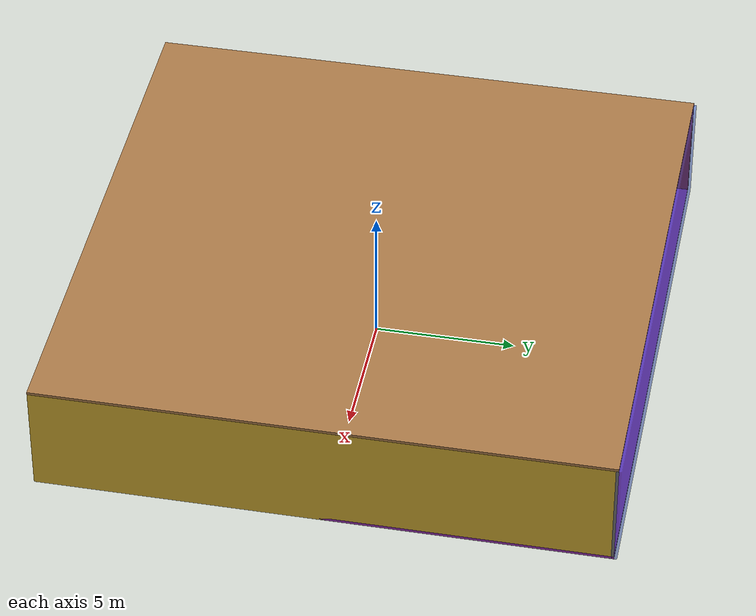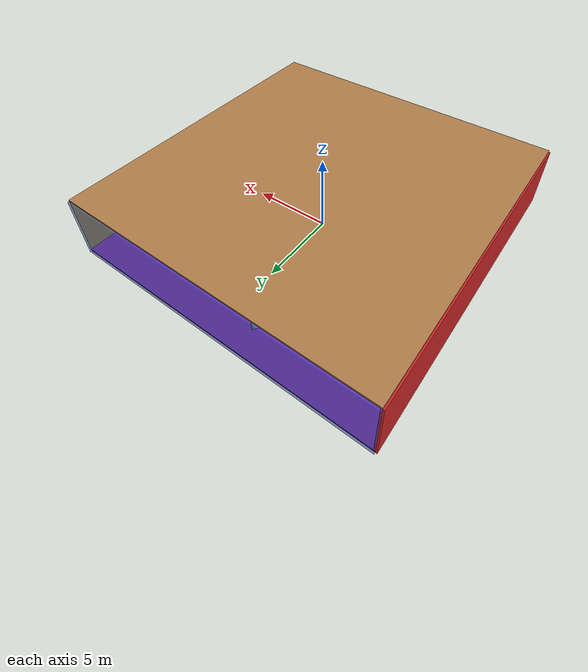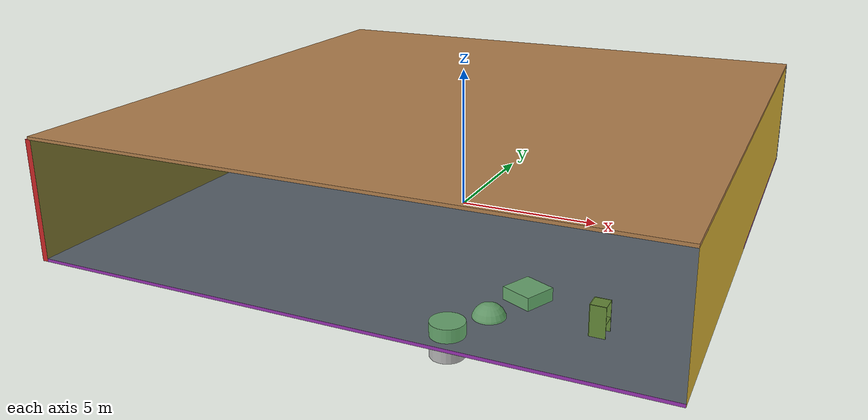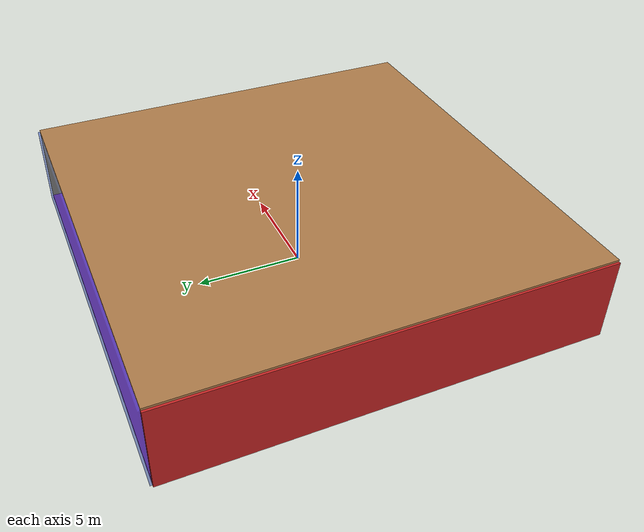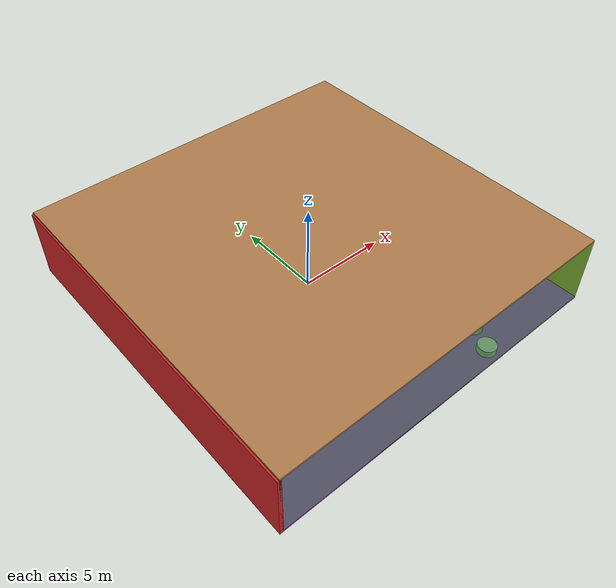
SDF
<sdf version="1.4">
 <world name="default">
  <physics type="ode">
   <max_step_size>0.001</max_step_size>
   <real_time_factor>1</real_time_factor>
   <real_time_update_rate>1000</real_time_update_rate>
   <gravity>0 0 -9.8</gravity>
  </physics>
  <scene><ambient>0.4 0.4 0.4 1</ambient><background>0.7 0.7 0.7 1</background><shadows>1</shadows></scene>
  <model name="Surrounding">
   <static>1</static>
   <link name="Ceiling">
    <collision name="Ceiling_Collision"><geometry><box><size>20 20 0.1</size></box></geometry></collision>
    <visual name="Ceiling_Visual">
     <geometry><box><size>20 20 0.1</size></box></geometry>
     <material>
      <script><uri>file://media/materials/scripts/gazebo.material</uri><name>Gazebo/WoodFloor</name></script>
     </material>
    </visual>
    <pose>0 0 4.05 0 0 0</pose>
   </link>
   <link name="Wall_South">
    <collision name="Wall_South_Collision">
     <geometry><box><size>20 0 4</size></box></geometry>
     <pose>0 0 2 0 -0 0</pose>
    </collision>
    <visual name="Wall_South_Visual">
     <pose>0 0 2 0 -0 0</pose>
     <geometry><box><size>20 0 4</size></box></geometry>
     <material>
      <script><uri>file://media/materials/scripts/gazebo.material</uri><name>Gazebo/GreenTransparent</name></script>
     </material>
    </visual>
    <velocity_decay><linear>0</linear><angular>0</angular></velocity_decay>
    <pose>0 -10 0 0 -0 0</pose>
   </link>
   <link name="Wall_East">
    <collision name="Wall_21_Collision">
     <geometry><box><size>20 0 4</size></box></geometry>
     <pose>0 0 2 0 -0 0</pose>
    </collision>
    <visual name="Wall_21_Visual">
     <pose>0 0 2 0 -0 0</pose>
     <geometry><box><size>20 0 4</size></box></geometry>
     <material>
      <script><uri>file://media/materials/scripts/gazebo.material</uri><name>Gazebo/Gold</name></script>
     </material>
    </visual>
    <velocity_decay><linear>0</linear><angular>0</angular></velocity_decay>
    <pose>10 0 0 0 -0 1.5708</pose>
   </link>
   <link name="Wall_North">
    <collision name="Wall_22_Collision">
     <geometry><box><size>20 0.2 4</size></box></geometry>
     <pose>0 0 2 0 -0 0</pose>
    </collision>
    <visual name="Wall_22_Visual">
     <pose>0 0 2 0 -0 0</pose>
     <geometry><box><size>20 0.2 4</size></box></geometry>
     <material>
      <script><uri>file://media/materials/scripts/gazebo.material</uri><name>Gazebo/BlueTransparent</name></script>
     </material>
    </visual>
    <velocity_decay><linear>0</linear><angular>0</angular></velocity_decay>
    <pose>0 10 0 0 -0 0</pose>
   </link>
   <link name="Wall_West">
    <collision name="Wall_23_Collision">
     <geometry><box><size>20 0.2 4</size></box></geometry>
     <pose>0 0 2 0 -0 0</pose>
    </collision>
    <visual name="Wall_23_Visual">
     <pose>0 0 2 0 -0 0</pose>
     <geometry><box><size>20 0.2 4</size></box></geometry>
     <material>
      <script><uri>file://media/materials/scripts/gazebo.material</uri><name>Gazebo/RedBright</name></script>
     </material>
    </visual>
    <velocity_decay><linear>0</linear><angular>0</angular></velocity_decay>
    <pose>-10 0 0 0 0 -1.5708</pose>
   </link>
   <link name="Ground_link">
    <collision name="collision">
     <pose>0 0 .05 0 -0 0</pose>
     <geometry><box><size>20 20 0.1</size></box></geometry>
    </collision>
    <visual name="visual">
     <pose>0 0 .05 0 -0 0</pose>
     <geometry><box><size>20 20 0.1</size></box></geometry>
     <material>
      <script><uri>file://media/materials/scripts/gazebo.material</uri><name>Gazebo/Purple</name></script>
     </material>
    </visual>
   </link>
   <static>1</static>
  </model>
  <spherical_coordinates>
   <surface_model>EARTH_WGS84</surface_model>
   <latitude_deg>0</latitude_deg>
   <longitude_deg>0</longitude_deg>
   <elevation>0</elevation>
   <heading_deg>0</heading_deg>
  </spherical_coordinates>
  <light name="lightball_0" type="diffuse">
   <diffuse>0.8 0.8 0.8 1</diffuse>
   <specular>0.2 0.2 0.2 1</specular>
   <attenuation>
    <range>100</range>
    <constant>0.7</constant>
    <linear>0.01</linear>
    <quadratic>0.001</quadratic>
   </attenuation>
   <direction>-0.5 0.1 -0.9</direction>
   <pose>-5.29997130563 -7.30381512029 3.7844465312 0 0 0</pose>
  </light>
  <light name="lightball_1" type="diffuse">
   <diffuse>0.8 0.8 0.8 1</diffuse>
   <specular>0.2 0.2 0.2 1</specular>
   <attenuation>
    <range>100</range>
    <constant>0.7</constant>
    <linear>0.01</linear>
    <quadratic>0.001</quadratic>
   </attenuation>
   <direction>-0.5 0.1 -0.9</direction>
   <pose>6.98581115406 3.08249381492 2.58036792527 0 0 0</pose>
  </light>
  <light name="lightball_2" type="diffuse">
   <diffuse>0.8 0.8 0.8 1</diffuse>
   <specular>0.2 0.2 0.2 1</specular>
   <attenuation>
    <range>100</range>
    <constant>0.7</constant>
    <linear>0.01</linear>
    <quadratic>0.001</quadratic>
   </attenuation>
   <direction>-0.5 0.1 -0.9</direction>
   <pose>-7.66028212995 -8.59540588228 1.02058225552 0 0 0</pose>
  </light>
  <light name="lightball_3" type="diffuse">
   <diffuse>0.8 0.8 0.8 1</diffuse>
   <specular>0.2 0.2 0.2 1</specular>
   <attenuation>
    <range>100</range>
    <constant>0.7</constant>
    <linear>0.01</linear>
    <quadratic>0.001</quadratic>
   </attenuation>
   <direction>-0.5 0.1 -0.9</direction>
   <pose>2.11760716523 -9.83663881488 2.0038963184 0 0 0</pose>
  </light>
  <light name="lightball_4" type="diffuse">
   <diffuse>0.8 0.8 0.8 1</diffuse>
   <specular>0.2 0.2 0.2 1</specular>
   <attenuation>
    <range>100</range>
    <constant>0.7</constant>
    <linear>0.01</linear>
    <quadratic>0.001</quadratic>
   </attenuation>
   <direction>-0.5 0.1 -0.9</direction>
   <pose>6.78969331345 2.72978329927 0.572633912124 0 0 0</pose>
  </light>
  <light name="lightball_5" type="diffuse">
   <diffuse>0.8 0.8 0.8 1</diffuse>
   <specular>0.2 0.2 0.2 1</specular>
   <attenuation>
    <range>100</range>
    <constant>0.7</constant>
    <linear>0.01</linear>
    <quadratic>0.001</quadratic>
   </attenuation>
   <direction>-0.5 0.1 -0.9</direction>
   <pose>-7.99232773344 -1.28375114763 2.99828864003 0 0 0</pose>
  </light>
  <light name="lightball_6" type="diffuse">
   <diffuse>0.8 0.8 0.8 1</diffuse>
   <specular>0.2 0.2 0.2 1</specular>
   <attenuation>
    <range>100</range>
    <constant>0.7</constant>
    <linear>0.01</linear>
    <quadratic>0.001</quadratic>
   </attenuation>
   <direction>-0.5 0.1 -0.9</direction>
   <pose>1.8930214138 -4.5498031101 2.99231022317 0 0 0</pose>
  </light>
  <light name="lightball_7" type="diffuse">
   <diffuse>0.8 0.8 0.8 1</diffuse>
   <specular>0.2 0.2 0.2 1</specular>
   <attenuation>
    <range>100</range>
    <constant>0.7</constant>
    <linear>0.01</linear>
    <quadratic>0.001</quadratic>
   </attenuation>
   <direction>-0.5 0.1 -0.9</direction>
   <pose>-6.86942315418 1.72338075566 1.41050334516 0 0 0</pose>
  </light>
  <light name="lightball_8" type="diffuse">
   <diffuse>0.8 0.8 0.8 1</diffuse>
   <specular>0.2 0.2 0.2 1</specular>
   <attenuation>
    <range>100</range>
    <constant>0.7</constant>
    <linear>0.01</linear>
    <quadratic>0.001</quadratic>
   </attenuation>
   <direction>-0.5 0.1 -0.9</direction>
   <pose>-1.51216517195 0.355446411461 0.946057548676 0 0 0</pose>
  </light>
  <include><uri>model://table</uri><pose>-8.13380211133 4.8741378767 0 0 0 0.307680582138</pose></include>
  <include>
   <uri>model://robocup_3Dsim_goal</uri>
   <pose>-1.17724368518 7.43358987045 0 0 0 0.86625583643</pose>
  </include>
  <include>
   <uri>model://textured_shapes</uri>
   <pose>4.23896423448 -7.91201620296 0 0 0 2.70726181448</pose>
  </include>
  <include><uri>model://cabinet</uri><pose>7.27134393627 -7.61237510087 0 0 0 3.12752744604</pose></include>
 </world>
</sdf>

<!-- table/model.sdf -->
<sdf version="1.5">
  <model name="table">
    <static>true</static>
    <link name="link">
      <collision name="surface">
        <pose>0 0 1.0 0 0 0</pose>
        <geometry>
          <box>
            <size>1.5 0.8 0.03</size>
          </box>
        </geometry>
        <surface>
          <friction>
            <ode>
              <mu>0.6</mu>
              <mu2>0.6</mu2>
            </ode>
          </friction>
        </surface>
      </collision>
      <visual name="visual1">
        <pose>0 0 1.0 0 0 0</pose>
        <geometry>
          <box>
            <size>1.5 0.8 0.03</size>
          </box>
        </geometry>
        <material>
          <script>
            <uri>model://media/materials/scripts/gazebo.material</uri>
            <name>Gazebo/Wood</name>
          </script>
        </material>
      </visual>
      <collision name="front_left_leg">
        <pose>0.68 0.38 0.5 0 0 0</pose>
        <geometry>
          <cylinder>
            <radius>0.02</radius>
            <length>1.0</length>
          </cylinder>
        </geometry>
      </collision>
      <visual name="front_left_leg">
        <pose>0.68 0.38 0.5 0 0 0</pose>
        <geometry>
          <cylinder>
            <radius>0.02</radius>
            <length>1.0</length>
          </cylinder>
        </geometry>
        <material>
          <script>
            <uri>model://media/materials/scripts/gazebo.material</uri>
            <name>Gazebo/Grey</name>
          </script>
        </material>
      </visual>
      <collision name="front_right_leg">
        <pose>0.68 -0.38 0.5 0 0 0</pose>
        <geometry>
          <cylinder>
            <radius>0.02</radius>
            <length>1.0</length>
          </cylinder>
        </geometry>
      </collision>
      <visual name="front_right_leg">
        <pose>0.68 -0.38 0.5 0 0 0</pose>
        <geometry>
          <cylinder>
            <radius>0.02</radius>
            <length>1.0</length>
          </cylinder>
        </geometry>
        <material>
          <script>
            <uri>model://media/materials/scripts/gazebo.material</uri>
            <name>Gazebo/Grey</name>
          </script>
        </material>
      </visual>
      <collision name="back_right_leg">
        <pose>-0.68 -0.38 0.5 0 0 0</pose>
        <geometry>
          <cylinder>
            <radius>0.02</radius>
            <length>1.0</length>
          </cylinder>
        </geometry>
      </collision>
      <visual name="back_right_leg">
        <pose>-0.68 -0.38 0.5 0 0 0</pose>
        <geometry>
          <cylinder>
            <radius>0.02</radius>
            <length>1.0</length>
          </cylinder>
        </geometry>
        <material>
          <script>
            <uri>model://media/materials/scripts/gazebo.material</uri>
            <name>Gazebo/Grey</name>
          </script>
        </material>
      </visual>
      <collision name="back_left_leg">
        <pose>-0.68 0.38 0.5 0 0 0</pose>
        <geometry>
          <cylinder>
            <radius>0.02</radius>
            <length>1.0</length>
          </cylinder>
        </geometry>
      </collision>
      <visual name="back_left_leg">
        <pose>-0.68 0.38 0.5 0 0 0</pose>
        <geometry>
          <cylinder>
            <radius>0.02</radius>
            <length>1.0</length>
          </cylinder>
        </geometry>
        <material>
          <script>
            <uri>model://media/materials/scripts/gazebo.material</uri>
            <name>Gazebo/Grey</name>
          </script>
        </material>
      </visual>
    </link>
  </model>
</sdf>

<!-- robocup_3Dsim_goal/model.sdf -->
<sdf version="1.5">
  <model name="robocup_3d_goal">
    <static>true</static>
    <link name="left_post">
      <pose>0 1.05 0.45 0 0 0</pose>
      <collision name="collision">
        <geometry>
          <cylinder>
            <radius>0.05</radius>
            <length>0.9</length>
          </cylinder>
        </geometry>
      </collision>
      <visual name="visual">
        <geometry>
          <cylinder>
            <radius>0.05</radius>
            <length>0.9</length>
          </cylinder>
        </geometry>
        <material>
          <script>
            <uri>file://media/materials/scripts/gazebo.material</uri>
            <name>Gazebo/ZincYellow</name>
          </script>
        </material>
      </visual>
    </link>
    <link name="left_support_horiz_lower">
      <pose>0.30 1.05 0.01 0 0 0</pose>
      <collision name="collision">
        <geometry>
          <box>
            <size>0.50 0.02 0.02</size>
          </box>
        </geometry>
      </collision>
      <visual name="visual">
        <geometry>
          <box>
            <size>0.50 0.02 0.02</size>
          </box>
        </geometry>
        <material>
          <script>
            <uri>file://media/materials/scripts/gazebo.material</uri>
            <name>Gazebo/White</name>
          </script>
        </material>
      </visual>
    </link>
    <link name="left_support_horiz_upper">
      <pose>0.30 1.05 0.79 0 0 0</pose>
      <collision name="collision">
        <geometry>
          <box>
            <size>0.50 0.02 0.02</size>
          </box>
        </geometry>
      </collision>
      <visual name="visual">
        <geometry>
          <box>
            <size>0.50 0.02 0.02</size>
          </box>
        </geometry>
        <material>
          <script>
            <uri>file://media/materials/scripts/gazebo.material</uri>
            <name>Gazebo/White</name>
          </script>
        </material>
      </visual>
    </link>
    <link name="left_support_vertical">
      <pose>0.56 1.05 0.4 0 1.5708 0</pose>
      <collision name="collision">
        <geometry>
          <box>
            <size>0.80 0.02 0.02</size>
          </box>
        </geometry>
      </collision>
      <visual name="visual">
        <geometry>
          <box>
            <size>0.80 0.02 0.02</size>
          </box>
        </geometry>
        <material>
          <script>
            <uri>file://media/materials/scripts/gazebo.material</uri>
            <name>Gazebo/White</name>
          </script>
        </material>
      </visual>
    </link>
    <link name="right_support_horiz_lower">
      <pose>0.30 -1.05 0.01 0 0 0</pose>
      <collision name="collision">
        <geometry>
          <box>
            <size>0.50 0.02 0.02</size>
          </box>
        </geometry>
      </collision>
      <visual name="visual">
        <geometry>
          <box>
            <size>0.50 0.02 0.02</size>
          </box>
        </geometry>
        <material>
          <script>
            <uri>file://media/materials/scripts/gazebo.material</uri>
            <name>Gazebo/White</name>
          </script>
        </material>
      </visual>
    </link>
    <link name="right_support_horiz_upper">
      <pose>0.30 -1.05 0.79 0 0 0</pose>
      <collision name="collision">
        <geometry>
          <box>
            <size>0.50 0.02 0.02</size>
          </box>
        </geometry>
      </collision>
      <visual name="visual">
        <geometry>
          <box>
            <size>0.50 0.02 0.02</size>
          </box>
        </geometry>
        <material>
          <script>
            <uri>file://media/materials/scripts/gazebo.material</uri>
            <name>Gazebo/White</name>
          </script>
        </material>
      </visual>
    </link>
    <link name="right_support_vertical">
      <pose>0.56 -1.05 0.4 0 1.5708 0</pose>
      <collision name="collision">
        <geometry>
          <box>
            <size>0.80 0.02 0.02</size>
          </box>
        </geometry>
      </collision>
      <visual name="visual">
        <geometry>
          <box>
            <size>0.80 0.02 0.02</size>
          </box>
        </geometry>
        <material>
          <script>
            <uri>file://media/materials/scripts/gazebo.material</uri>
            <name>Gazebo/White</name>
          </script>
        </material>
      </visual>
    </link>
    <link name="center_support_horiz_lower">
      <pose>0.56 0 0.01 0 1.5708 0</pose>
      <collision name="collision">
        <geometry>
          <box>
            <size>0.02 2.08 0.02</size>
          </box>
        </geometry>
      </collision>
      <visual name="visual">
        <geometry>
          <box>
            <size>0.02 2.08 0.02</size>
          </box>
        </geometry>
        <material>
          <script>
            <uri>file://media/materials/scripts/gazebo.material</uri>
            <name>Gazebo/White</name>
          </script>
        </material>
      </visual>
    </link>
    <link name="center_support_horiz_upper">
      <pose>0.56 0 0.79 0 1.5708 0</pose>
      <collision name="collision">
        <geometry>
          <box>
            <size>0.02 2.08 0.02</size>
          </box>
        </geometry>
      </collision>
      <visual name="visual">
        <geometry>
          <box>
            <size>0.02 2.08 0.02</size>
          </box>
        </geometry>
        <material>
          <script>
            <uri>file://media/materials/scripts/gazebo.material</uri>
            <name>Gazebo/White</name>
          </script>
        </material>
      </visual>
    </link>
    <link name="right_post">
      <pose>0 -1.05 0.45 0 0 0</pose>
      <collision name="collision">
        <geometry>
          <cylinder>
            <radius>0.05</radius>
            <length>0.9</length>
          </cylinder>
        </geometry>
      </collision>
      <visual name="visual">
        <geometry>
          <cylinder>
            <radius>0.05</radius>
            <length>0.9</length>
          </cylinder>
        </geometry>
        <material>
          <script>
            <uri>file://media/materials/scripts/gazebo.material</uri>
            <name>Gazebo/ZincYellow</name>
          </script>
        </material>
      </visual>
    </link>
    <link name="crossbar">
      <pose>0 0 0.85 1.57 1.57 0</pose>
      <collision name="collision">
        <geometry>
          <cylinder>
            <radius>0.05</radius>
            <length>2.0</length>
          </cylinder>
        </geometry>
      </collision>
      <visual name="visual">
        <geometry>
          <cylinder>
            <radius>0.05</radius>
            <length>2.0</length>
          </cylinder>
        </geometry>
        <material>
          <script>
            <uri>file://media/materials/scripts/gazebo.material</uri>
            <name>Gazebo/ZincYellow</name>
          </script>
        </material>
      </visual>
    </link>
    <link name="center_net">
      <pose>0.56 0 0.40 0 0 0</pose>
      <collision name="collision">
        <geometry>
          <box>
            <size>0.01 2.1 0.80</size>
          </box>
        </geometry>
      </collision>
      <visual name="visual">
        <geometry>
          <box>
            <size>0.01 2.1 0.80</size>
          </box>
        </geometry>
        <material>
          <script>
            <uri>model://../model_source/models/robocup09_spl_field/materials/scripts/</uri>
            <uri>model://../model_source/models/robocup09_spl_field/materials/textures/</uri>
            <name>RoboCup/Net</name>
          </script>
        </material>
      </visual>
    </link>
    <link name="left_net">
      <pose>0.30 1.05 0.40 0 0 0</pose>
      <collision name="collision">
        <geometry>
          <box>
            <size>0.50 0.01 0.76</size>
          </box>
        </geometry>
      </collision>
      <visual name="visual">
        <geometry>
          <box>
            <size>0.50 0.01 0.76</size>
          </box>
        </geometry>
        <material>
          <script>
            <uri>model://../model_source/models/robocup09_spl_field/materials/scripts/</uri>
            <uri>model://../model_source/models/robocup09_spl_field/materials/textures/</uri>
            <name>RoboCup/Net</name>
          </script>
        </material>
      </visual>
    </link>
    <link name="right_net">
      <pose>0.30 -1.05 0.40 0 0 0</pose>
      <collision name="collision">
        <geometry>
          <box>
            <size>0.50 0.01 0.76</size>
          </box>
        </geometry>
      </collision>
      <visual name="visual">
        <geometry>
          <box>
            <size>0.50 0.01 0.76</size>
          </box>
        </geometry>
        <material>
          <script>
            <uri>model://../model_source/models/robocup09_spl_field/materials/scripts/</uri>
            <uri>model://../model_source/models/robocup09_spl_field/materials/textures/</uri>
            <name>RoboCup/Net</name>
          </script>
        </material>
      </visual>
    </link>
  </model>
</sdf>

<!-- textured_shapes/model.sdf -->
<sdf version="1.6">
  <model name="textured_shapes">
    <pose>0 0 0.5 0 0 0</pose>
    <link name="box">
      <pose>0 -1.5 0 0 0 0</pose>
      <collision name="collision">
        <geometry>
          <box>
            <size>1 1 1</size>
          </box>
        </geometry>
      </collision>
      <visual name="visual">
        <geometry>
          <box>
            <size>1 1 1</size>
          </box>
        </geometry>
        <material>
          <script>
            <uri>model://../model_source/models/textured_shapes/materials/scripts</uri>
            <uri>model://../model_source/models/textured_shapes/materials/textures</uri>
            <name>TexturedShape/Squares</name>
          </script>
        </material>
      </visual>
    </link>
    <link name="sphere">
      <collision name="collision">
        <geometry>
          <sphere>
            <radius>0.5</radius>
          </sphere>
        </geometry>
      </collision>
      <visual name="visual">
        <geometry>
          <sphere>
            <radius>0.5</radius>
          </sphere>
        </geometry>
        <material>
          <script>
            <uri>model://../model_source/models/textured_shapes/materials/scripts</uri>
            <uri>model://../model_source/models/textured_shapes/materials/textures</uri>
            <name>TexturedShape/Squares</name>
          </script>
        </material>
      </visual>
    </link>
    <link name="cylinder">
      <pose>0 1.5 0 0 0 0</pose>
      <collision name="collision">
        <geometry>
          <cylinder>
            <radius>0.5</radius>
            <length>1</length>
          </cylinder>
        </geometry>
      </collision>
      <visual name="visual">
        <geometry>
          <cylinder>
            <radius>0.5</radius>
            <length>1</length>
          </cylinder>
        </geometry>
        <material>
          <script>
            <uri>model://../model_source/models/textured_shapes/materials/scripts</uri>
            <uri>model://../model_source/models/textured_shapes/materials/textures</uri>
            <name>TexturedShape/Squares</name>
          </script>
        </material>
      </visual>
    </link>
  </model>
</sdf>

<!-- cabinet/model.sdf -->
<sdf version="1.5">
  <model name="cabinet">
    <static>true</static>
    <link name="cabinet_bottom_plate">
      <inertial>
        <pose>0 0 -1 0 0 0</pose>
        <inertia>
          <ixx>2.050000</ixx>
          <ixy>0</ixy>
          <ixz>0</ixz>
          <iyy>2.050000</iyy>
          <iyz>0</iyz>
          <izz>2.050000</izz>
        </inertia>
        <mass>25.000000</mass>
      </inertial>
      <collision name="cabinet_bottom_plate_geom">
        <pose>0 0 0.010000 0 0 0</pose>
        <geometry>
          <box>
            <size>0.450000 0.450000 0.020000</size>
          </box>
        </geometry>
      </collision>
      <visual name="cabinet_bottom_plate_geom_visual">
        <pose>0 0 0.010000 0 0 0</pose>
        <geometry>
          <box>
            <size>0.450000 0.450000 0.020000</size>
          </box>
        </geometry>
        <material>
          <script>
            <uri>model://media/materials/scripts/gazebo.material</uri>
            <name>Gazebo/Wood</name>
          </script>
        </material>
      </visual>
      <collision name="cabinet_bottom_plate_geom_cabinet_back_plate">
        <pose>0.235000 0 0.510000 0 0 0</pose>
        <geometry>
          <box>
            <size>0.020000 0.450000 1.020000</size>
          </box>
        </geometry>
      </collision>
      <visual name="cabinet_bottom_plate_geom_cabinet_back_plate_visual">
        <pose>0.235000 0 0.510000 0 0 0</pose>
        <geometry>
          <box>
            <size>0.020000 0.450000 1.020000</size>
          </box>
        </geometry>
        <material>
          <script>
            <uri>model://media/materials/scripts/gazebo.material</uri>
            <name>Gazebo/Wood</name>
          </script>
        </material>
      </visual>
      <collision name="cabinet_bottom_plate_geom_cabinet_left_plate">
        <pose>0 0.235000 0.510000 0 0 0</pose>
        <geometry>
          <box>
            <size>0.450000 0.020000 1.020000</size>
          </box>
        </geometry>
      </collision>
      <visual name="cabinet_bottom_plate_geom_cabinet_left_plate_visual">
        <pose>0 0.235000 0.510000 0 0 0</pose>
        <geometry>
          <box>
            <size>0.450000 0.020000 1.020000</size>
          </box>
        </geometry>
        <material>
          <script>
            <uri>model://media/materials/scripts/gazebo.material</uri>
            <name>Gazebo/Wood</name>
          </script>
        </material>
      </visual>
      <collision name="cabinet_bottom_plate_geom_cabinet_middle_plate">
        <pose>0 0 0.510000 0 0 0</pose>
        <geometry>
          <box>
            <size>0.450000 0.450000 0.020000</size>
          </box>
        </geometry>
      </collision>
      <visual name="cabinet_bottom_plate_geom_cabinet_middle_plate_visual">
        <pose>0 0 0.510000 0 0 0</pose>
        <geometry>
          <box>
            <size>0.450000 0.450000 0.020000</size>
          </box>
        </geometry>
        <material>
          <script>
            <uri>model://media/materials/scripts/gazebo.material</uri>
            <name>Gazebo/Wood</name>
          </script>
        </material>
      </visual>
      <collision name="cabinet_bottom_plate_geom_cabinet_right_plate">
        <pose>0 -0.235000 0.510000 0 0 0</pose>
        <geometry>
          <box>
            <size>0.450000 0.020000 1.020000</size>
          </box>
        </geometry>
      </collision>
      <visual name="cabinet_bottom_plate_geom_cabinet_right_plate_visual">
        <pose>0 -0.235000 0.510000 0 0 0</pose>
        <geometry>
          <box>
            <size>0.450000 0.020000 1.020000</size>
          </box>
        </geometry>
        <material>
          <script>
            <uri>model://media/materials/scripts/gazebo.material</uri>
            <name>Gazebo/Wood</name>
          </script>
        </material>
      </visual>
      <collision name="cabinet_bottom_plate_geom_cabinet_top_plate">
        <pose>0 0 1.010000 0 0 0</pose>
        <geometry>
          <box>
            <size>0.450000 0.450000 0.020000</size>
          </box>
        </geometry>
      </collision>
      <visual name="cabinet_bottom_plate_geom_cabinet_top_plate_visual">
        <pose>0 0 1.010000 0 0 0</pose>
        <geometry>
          <box>
            <size>0.450000 0.450000 0.020000</size>
          </box>
        </geometry>
        <material>
          <script>
            <uri>model://media/materials/scripts/gazebo.material</uri>
            <name>Gazebo/Wood</name>
          </script>
        </material>
      </visual>
    </link>
  </model>
</sdf>
